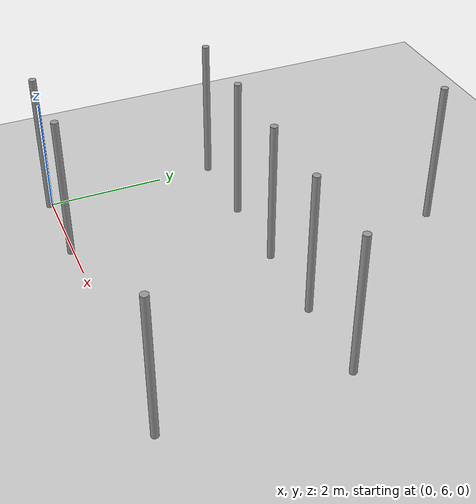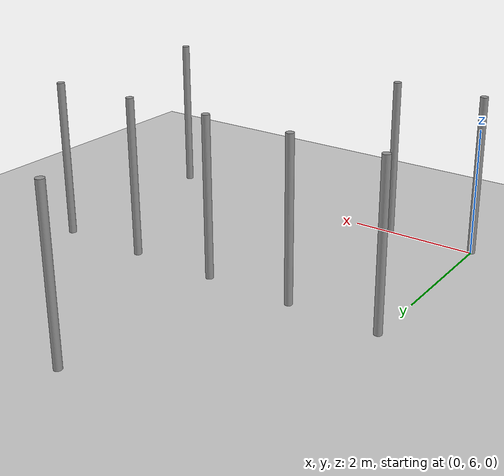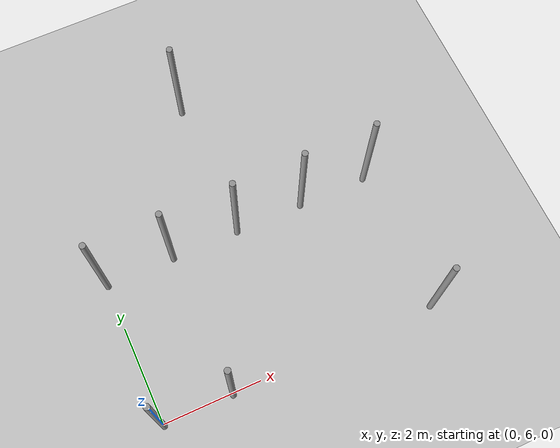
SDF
<sdf version="1.6">
 <world name="default">
  <model name="ground_plane">
   <static>1</static>
   <link name="link">
    <collision name="collision">
     <geometry><plane><normal>0 0 1</normal><size>100 100</size></plane></geometry>
     <surface><friction><ode><mu>100</mu><mu2>50</mu2></ode></friction></surface>
    </collision>
    <visual name="visual">
     <cast_shadows>0</cast_shadows>
     <geometry><plane><normal>0 0 1</normal><size>100 100</size></plane></geometry>
     <material>
      <script><uri>file://media/materials/scripts/gazebo.material</uri><name>Gazebo/Grey</name></script>
     </material>
    </visual>
   </link>
  </model>
  <model name="pole">
   <link name="link_0">
    <inertial>
     <mass>0.0364582</mass>
     <inertia>
      <ixx>0.00312124</ixx>
      <ixy>0</ixy>
      <ixz>0</ixz>
      <iyy>0.00312124</iyy>
      <iyz>0</iyz>
      <izz>0.00016615</izz>
     </inertia>
    </inertial>
    <visual name="visual">
     <geometry><cylinder><radius>0.06</radius><length>2.5</length></cylinder></geometry>
     <material>
      <lighting>1</lighting>
      <script><uri>file://media/materials/scripts/gazebo.material</uri><name>Gazebo/Grey</name></script>
      <ambient>0.3 0.3 0.3 1</ambient>
      <diffuse>0.7 0.7 0.7 1</diffuse>
      <specular>0.01 0.01 0.01 1</specular>
      <emissive>0 0 0 1</emissive>
      <shader type="vertex"><normal_map>__default__</normal_map></shader>
     </material>
    </visual>
    <collision name="collision">
     <geometry><cylinder><radius>0.06</radius><length>2.5</length></cylinder></geometry>
     <surface>
      <friction>
       <ode><mu>1</mu><mu2>1</mu2><fdir1>0 0 0</fdir1><slip1>0</slip1><slip2>0</slip2></ode>
       <torsional>
        <coefficient>1</coefficient>
        <patch_radius>0</patch_radius>
        <surface_radius>0</surface_radius>
        <use_patch_radius>1</use_patch_radius>
        <ode><slip>0</slip></ode>
       </torsional>
      </friction>
      <bounce><restitution_coefficient>0</restitution_coefficient><threshold>1e+06</threshold></bounce>
      <contact>
       <collide_without_contact>0</collide_without_contact>
       <collide_without_contact_bitmask>1</collide_without_contact_bitmask>
       <collide_bitmask>1</collide_bitmask>
       <ode>
        <soft_cfm>0</soft_cfm>
        <soft_erp>0.2</soft_erp>
        <kp>1e+13</kp>
        <kd>1</kd>
        <max_vel>0.01</max_vel>
        <min_depth>0</min_depth>
       </ode>
       <bullet>
        <split_impulse>1</split_impulse>
        <split_impulse_penetration_threshold>-0.01</split_impulse_penetration_threshold>
        <soft_cfm>0</soft_cfm>
        <soft_erp>0.2</soft_erp>
        <kp>1e+13</kp>
        <kd>1</kd>
       </bullet>
      </contact>
     </surface>
    </collision>
   </link>
   <static>0</static>
   <pose>0.006684 5.96113 1.24999 -1e-06 -0 -0.013932</pose>
  </model>
  <model name="pole_0">
   <link name="link_0">
    <inertial>
     <mass>0.0364582</mass>
     <inertia>
      <ixx>0.00312124</ixx>
      <ixy>0</ixy>
      <ixz>0</ixz>
      <iyy>0.00312124</iyy>
      <iyz>0</iyz>
      <izz>0.00016615</izz>
     </inertia>
    </inertial>
    <visual name="visual">
     <geometry><cylinder><radius>0.06</radius><length>2.5</length></cylinder></geometry>
     <material>
      <lighting>1</lighting>
      <script><uri>file://media/materials/scripts/gazebo.material</uri><name>Gazebo/Grey</name></script>
      <ambient>0.3 0.3 0.3 1</ambient>
      <diffuse>0.7 0.7 0.7 1</diffuse>
      <specular>0.01 0.01 0.01 1</specular>
      <emissive>0 0 0 1</emissive>
      <shader type="vertex"><normal_map>__default__</normal_map></shader>
     </material>
    </visual>
    <collision name="collision">
     <geometry><cylinder><radius>0.06</radius><length>2.5</length></cylinder></geometry>
     <surface>
      <friction>
       <ode><mu>1</mu><mu2>1</mu2><fdir1>0 0 0</fdir1><slip1>0</slip1><slip2>0</slip2></ode>
       <torsional>
        <coefficient>1</coefficient>
        <patch_radius>0</patch_radius>
        <surface_radius>0</surface_radius>
        <use_patch_radius>1</use_patch_radius>
        <ode><slip>0</slip></ode>
       </torsional>
      </friction>
      <bounce><restitution_coefficient>0</restitution_coefficient><threshold>1e+06</threshold></bounce>
      <contact>
       <collide_without_contact>0</collide_without_contact>
       <collide_without_contact_bitmask>1</collide_without_contact_bitmask>
       <collide_bitmask>1</collide_bitmask>
       <ode>
        <soft_cfm>0</soft_cfm>
        <soft_erp>0.2</soft_erp>
        <kp>1e+13</kp>
        <kd>1</kd>
        <max_vel>0.01</max_vel>
        <min_depth>0</min_depth>
       </ode>
       <bullet>
        <split_impulse>1</split_impulse>
        <split_impulse_penetration_threshold>-0.01</split_impulse_penetration_threshold>
        <soft_cfm>0</soft_cfm>
        <soft_erp>0.2</soft_erp>
        <kp>1e+13</kp>
        <kd>1</kd>
       </bullet>
      </contact>
     </surface>
    </collision>
   </link>
   <static>0</static>
   <pose>0.013481 8.94126 1.24999 -1e-06 1e-06 -0.016598</pose>
  </model>
  <model name="pole_12">
   <link name="link_0">
    <inertial>
     <mass>0.0364582</mass>
     <inertia>
      <ixx>0.00312124</ixx>
      <ixy>0</ixy>
      <ixz>0</ixz>
      <iyy>0.00312124</iyy>
      <iyz>0</iyz>
      <izz>0.00016615</izz>
     </inertia>
    </inertial>
    <visual name="visual">
     <geometry><cylinder><radius>0.06</radius><length>2.5</length></cylinder></geometry>
     <material>
      <lighting>1</lighting>
      <script><uri>file://media/materials/scripts/gazebo.material</uri><name>Gazebo/Grey</name></script>
      <ambient>0.3 0.3 0.3 1</ambient>
      <diffuse>0.7 0.7 0.7 1</diffuse>
      <specular>0.01 0.01 0.01 1</specular>
      <emissive>0 0 0 1</emissive>
      <shader type="vertex"><normal_map>__default__</normal_map></shader>
     </material>
    </visual>
    <collision name="collision">
     <geometry><cylinder><radius>0.06</radius><length>2.5</length></cylinder></geometry>
     <surface>
      <friction>
       <ode><mu>1</mu><mu2>1</mu2><fdir1>0 0 0</fdir1><slip1>0</slip1><slip2>0</slip2></ode>
       <torsional>
        <coefficient>1</coefficient>
        <patch_radius>0</patch_radius>
        <surface_radius>0</surface_radius>
        <use_patch_radius>1</use_patch_radius>
        <ode><slip>0</slip></ode>
       </torsional>
      </friction>
      <bounce><restitution_coefficient>0</restitution_coefficient><threshold>1e+06</threshold></bounce>
      <contact>
       <collide_without_contact>0</collide_without_contact>
       <collide_without_contact_bitmask>1</collide_without_contact_bitmask>
       <collide_bitmask>1</collide_bitmask>
       <ode>
        <soft_cfm>0</soft_cfm>
        <soft_erp>0.2</soft_erp>
        <kp>1e+13</kp>
        <kd>1</kd>
        <max_vel>0.01</max_vel>
        <min_depth>0</min_depth>
       </ode>
       <bullet>
        <split_impulse>1</split_impulse>
        <split_impulse_penetration_threshold>-0.01</split_impulse_penetration_threshold>
        <soft_cfm>0</soft_cfm>
        <soft_erp>0.2</soft_erp>
        <kp>1e+13</kp>
        <kd>1</kd>
       </bullet>
      </contact>
     </surface>
    </collision>
   </link>
   <static>0</static>
   <pose>1.41357 5.96099 1.24999 0 -1e-06 -0.008945</pose>
  </model>
  <model name="pole_15">
   <link name="link_0">
    <inertial>
     <mass>0.0364582</mass>
     <inertia>
      <ixx>0.00312124</ixx>
      <ixy>0</ixy>
      <ixz>0</ixz>
      <iyy>0.00312124</iyy>
      <iyz>0</iyz>
      <izz>0.00016615</izz>
     </inertia>
    </inertial>
    <visual name="visual">
     <geometry><cylinder><radius>0.06</radius><length>2.5</length></cylinder></geometry>
     <material>
      <lighting>1</lighting>
      <script><uri>file://media/materials/scripts/gazebo.material</uri><name>Gazebo/Grey</name></script>
      <ambient>0.3 0.3 0.3 1</ambient>
      <diffuse>0.7 0.7 0.7 1</diffuse>
      <specular>0.01 0.01 0.01 1</specular>
      <emissive>0 0 0 1</emissive>
      <shader type="vertex"><normal_map>__default__</normal_map></shader>
     </material>
    </visual>
    <collision name="collision">
     <geometry><cylinder><radius>0.06</radius><length>2.5</length></cylinder></geometry>
     <surface>
      <friction>
       <ode><mu>1</mu><mu2>1</mu2><fdir1>0 0 0</fdir1><slip1>0</slip1><slip2>0</slip2></ode>
       <torsional>
        <coefficient>1</coefficient>
        <patch_radius>0</patch_radius>
        <surface_radius>0</surface_radius>
        <use_patch_radius>1</use_patch_radius>
        <ode><slip>0</slip></ode>
       </torsional>
      </friction>
      <bounce><restitution_coefficient>0</restitution_coefficient><threshold>1e+06</threshold></bounce>
      <contact>
       <collide_without_contact>0</collide_without_contact>
       <collide_without_contact_bitmask>1</collide_without_contact_bitmask>
       <collide_bitmask>1</collide_bitmask>
       <ode>
        <soft_cfm>0</soft_cfm>
        <soft_erp>0.2</soft_erp>
        <kp>1e+13</kp>
        <kd>1</kd>
        <max_vel>0.01</max_vel>
        <min_depth>0</min_depth>
       </ode>
       <bullet>
        <split_impulse>1</split_impulse>
        <split_impulse_penetration_threshold>-0.01</split_impulse_penetration_threshold>
        <soft_cfm>0</soft_cfm>
        <soft_erp>0.2</soft_erp>
        <kp>1e+13</kp>
        <kd>1</kd>
       </bullet>
      </contact>
     </surface>
    </collision>
   </link>
   <static>0</static>
   <pose>5.62349 5.96104 1.24999 0 1e-06 -0.009778</pose>
  </model>
  <model name="pole_16">
   <link name="link_0">
    <inertial>
     <mass>0.0364582</mass>
     <inertia>
      <ixx>0.00312124</ixx>
      <ixy>0</ixy>
      <ixz>0</ixz>
      <iyy>0.00312124</iyy>
      <iyz>0</iyz>
      <izz>0.00016615</izz>
     </inertia>
    </inertial>
    <visual name="visual">
     <geometry><cylinder><radius>0.06</radius><length>2.5</length></cylinder></geometry>
     <material>
      <lighting>1</lighting>
      <script><uri>file://media/materials/scripts/gazebo.material</uri><name>Gazebo/Grey</name></script>
      <ambient>0.3 0.3 0.3 1</ambient>
      <diffuse>0.7 0.7 0.7 1</diffuse>
      <specular>0.01 0.01 0.01 1</specular>
      <emissive>0 0 0 1</emissive>
      <shader type="vertex"><normal_map>__default__</normal_map></shader>
     </material>
    </visual>
    <collision name="collision">
     <geometry><cylinder><radius>0.06</radius><length>2.5</length></cylinder></geometry>
     <surface>
      <friction>
       <ode><mu>1</mu><mu2>1</mu2><fdir1>0 0 0</fdir1><slip1>0</slip1><slip2>0</slip2></ode>
       <torsional>
        <coefficient>1</coefficient>
        <patch_radius>0</patch_radius>
        <surface_radius>0</surface_radius>
        <use_patch_radius>1</use_patch_radius>
        <ode><slip>0</slip></ode>
       </torsional>
      </friction>
      <bounce><restitution_coefficient>0</restitution_coefficient><threshold>1e+06</threshold></bounce>
      <contact>
       <collide_without_contact>0</collide_without_contact>
       <collide_without_contact_bitmask>1</collide_without_contact_bitmask>
       <collide_bitmask>1</collide_bitmask>
       <ode>
        <soft_cfm>0</soft_cfm>
        <soft_erp>0.2</soft_erp>
        <kp>1e+13</kp>
        <kd>1</kd>
        <max_vel>0.01</max_vel>
        <min_depth>0</min_depth>
       </ode>
       <bullet>
        <split_impulse>1</split_impulse>
        <split_impulse_penetration_threshold>-0.01</split_impulse_penetration_threshold>
        <soft_cfm>0</soft_cfm>
        <soft_erp>0.2</soft_erp>
        <kp>1e+13</kp>
        <kd>1</kd>
       </bullet>
      </contact>
     </surface>
    </collision>
   </link>
   <static>0</static>
   <pose>1.41308 8.94062 1.24999 1e-06 2e-06 -0.009953</pose>
  </model>
  <model name="pole_17">
   <link name="link_0">
    <inertial>
     <mass>0.0364582</mass>
     <inertia>
      <ixx>0.00312124</ixx>
      <ixy>0</ixy>
      <ixz>0</ixz>
      <iyy>0.00312124</iyy>
      <iyz>0</iyz>
      <izz>0.00016615</izz>
     </inertia>
    </inertial>
    <visual name="visual">
     <geometry><cylinder><radius>0.06</radius><length>2.5</length></cylinder></geometry>
     <material>
      <lighting>1</lighting>
      <script><uri>file://media/materials/scripts/gazebo.material</uri><name>Gazebo/Grey</name></script>
      <ambient>0.3 0.3 0.3 1</ambient>
      <diffuse>0.7 0.7 0.7 1</diffuse>
      <specular>0.01 0.01 0.01 1</specular>
      <emissive>0 0 0 1</emissive>
      <shader type="vertex"><normal_map>__default__</normal_map></shader>
     </material>
    </visual>
    <collision name="collision">
     <geometry><cylinder><radius>0.06</radius><length>2.5</length></cylinder></geometry>
     <surface>
      <friction>
       <ode><mu>1</mu><mu2>1</mu2><fdir1>0 0 0</fdir1><slip1>0</slip1><slip2>0</slip2></ode>
       <torsional>
        <coefficient>1</coefficient>
        <patch_radius>0</patch_radius>
        <surface_radius>0</surface_radius>
        <use_patch_radius>1</use_patch_radius>
        <ode><slip>0</slip></ode>
       </torsional>
      </friction>
      <bounce><restitution_coefficient>0</restitution_coefficient><threshold>1e+06</threshold></bounce>
      <contact>
       <collide_without_contact>0</collide_without_contact>
       <collide_without_contact_bitmask>1</collide_without_contact_bitmask>
       <collide_bitmask>1</collide_bitmask>
       <ode>
        <soft_cfm>0</soft_cfm>
        <soft_erp>0.2</soft_erp>
        <kp>1e+13</kp>
        <kd>1</kd>
        <max_vel>0.01</max_vel>
        <min_depth>0</min_depth>
       </ode>
       <bullet>
        <split_impulse>1</split_impulse>
        <split_impulse_penetration_threshold>-0.01</split_impulse_penetration_threshold>
        <soft_cfm>0</soft_cfm>
        <soft_erp>0.2</soft_erp>
        <kp>1e+13</kp>
        <kd>1</kd>
       </bullet>
      </contact>
     </surface>
    </collision>
   </link>
   <static>0</static>
   <pose>2.79984 8.94055 1.25 0 2e-06 -0.008548</pose>
  </model>
  <model name="pole_18">
   <link name="link_0">
    <inertial>
     <mass>0.0364582</mass>
     <inertia>
      <ixx>0.00312124</ixx>
      <ixy>0</ixy>
      <ixz>0</ixz>
      <iyy>0.00312124</iyy>
      <iyz>0</iyz>
      <izz>0.00016615</izz>
     </inertia>
    </inertial>
    <visual name="visual">
     <geometry><cylinder><radius>0.06</radius><length>2.5</length></cylinder></geometry>
     <material>
      <lighting>1</lighting>
      <script><uri>file://media/materials/scripts/gazebo.material</uri><name>Gazebo/Grey</name></script>
      <ambient>0.3 0.3 0.3 1</ambient>
      <diffuse>0.7 0.7 0.7 1</diffuse>
      <specular>0.01 0.01 0.01 1</specular>
      <emissive>0 0 0 1</emissive>
      <shader type="vertex"><normal_map>__default__</normal_map></shader>
     </material>
    </visual>
    <collision name="collision">
     <geometry><cylinder><radius>0.06</radius><length>2.5</length></cylinder></geometry>
     <surface>
      <friction>
       <ode><mu>1</mu><mu2>1</mu2><fdir1>0 0 0</fdir1><slip1>0</slip1><slip2>0</slip2></ode>
       <torsional>
        <coefficient>1</coefficient>
        <patch_radius>0</patch_radius>
        <surface_radius>0</surface_radius>
        <use_patch_radius>1</use_patch_radius>
        <ode><slip>0</slip></ode>
       </torsional>
      </friction>
      <bounce><restitution_coefficient>0</restitution_coefficient><threshold>1e+06</threshold></bounce>
      <contact>
       <collide_without_contact>0</collide_without_contact>
       <collide_without_contact_bitmask>1</collide_without_contact_bitmask>
       <collide_bitmask>1</collide_bitmask>
       <ode>
        <soft_cfm>0</soft_cfm>
        <soft_erp>0.2</soft_erp>
        <kp>1e+13</kp>
        <kd>1</kd>
        <max_vel>0.01</max_vel>
        <min_depth>0</min_depth>
       </ode>
       <bullet>
        <split_impulse>1</split_impulse>
        <split_impulse_penetration_threshold>-0.01</split_impulse_penetration_threshold>
        <soft_cfm>0</soft_cfm>
        <soft_erp>0.2</soft_erp>
        <kp>1e+13</kp>
        <kd>1</kd>
       </bullet>
      </contact>
     </surface>
    </collision>
   </link>
   <static>0</static>
   <pose>4.20383 8.94053 1.25 -1e-06 -2e-06 -0.006128</pose>
  </model>
  <model name="pole_19">
   <link name="link_0">
    <inertial>
     <mass>0.0364582</mass>
     <inertia>
      <ixx>0.00312124</ixx>
      <ixy>0</ixy>
      <ixz>0</ixz>
      <iyy>0.00312124</iyy>
      <iyz>0</iyz>
      <izz>0.00016615</izz>
     </inertia>
    </inertial>
    <visual name="visual">
     <geometry><cylinder><radius>0.06</radius><length>2.5</length></cylinder></geometry>
     <material>
      <lighting>1</lighting>
      <script><uri>file://media/materials/scripts/gazebo.material</uri><name>Gazebo/Grey</name></script>
      <ambient>0.3 0.3 0.3 1</ambient>
      <diffuse>0.7 0.7 0.7 1</diffuse>
      <specular>0.01 0.01 0.01 1</specular>
      <emissive>0 0 0 1</emissive>
      <shader type="vertex"><normal_map>__default__</normal_map></shader>
     </material>
    </visual>
    <collision name="collision">
     <geometry><cylinder><radius>0.06</radius><length>2.5</length></cylinder></geometry>
     <surface>
      <friction>
       <ode><mu>1</mu><mu2>1</mu2><fdir1>0 0 0</fdir1><slip1>0</slip1><slip2>0</slip2></ode>
       <torsional>
        <coefficient>1</coefficient>
        <patch_radius>0</patch_radius>
        <surface_radius>0</surface_radius>
        <use_patch_radius>1</use_patch_radius>
        <ode><slip>0</slip></ode>
       </torsional>
      </friction>
      <bounce><restitution_coefficient>0</restitution_coefficient><threshold>1e+06</threshold></bounce>
      <contact>
       <collide_without_contact>0</collide_without_contact>
       <collide_without_contact_bitmask>1</collide_without_contact_bitmask>
       <collide_bitmask>1</collide_bitmask>
       <ode>
        <soft_cfm>0</soft_cfm>
        <soft_erp>0.2</soft_erp>
        <kp>1e+13</kp>
        <kd>1</kd>
        <max_vel>0.01</max_vel>
        <min_depth>0</min_depth>
       </ode>
       <bullet>
        <split_impulse>1</split_impulse>
        <split_impulse_penetration_threshold>-0.01</split_impulse_penetration_threshold>
        <soft_cfm>0</soft_cfm>
        <soft_erp>0.2</soft_erp>
        <kp>1e+13</kp>
        <kd>1</kd>
       </bullet>
      </contact>
     </surface>
    </collision>
   </link>
   <static>0</static>
   <pose>5.62934 8.94063 1.24999 -0 2e-06 -0.010026</pose>
  </model>
  <model name="pole_21">
   <link name="link_0">
    <inertial>
     <mass>0.0364582</mass>
     <inertia>
      <ixx>0.00312124</ixx>
      <ixy>0</ixy>
      <ixz>0</ixz>
      <iyy>0.00312124</iyy>
      <iyz>0</iyz>
      <izz>0.00016615</izz>
     </inertia>
    </inertial>
    <visual name="visual">
     <geometry><cylinder><radius>0.06</radius><length>2.5</length></cylinder></geometry>
     <material>
      <lighting>1</lighting>
      <script><uri>file://media/materials/scripts/gazebo.material</uri><name>Gazebo/Grey</name></script>
      <ambient>0.3 0.3 0.3 1</ambient>
      <diffuse>0.7 0.7 0.7 1</diffuse>
      <specular>0.01 0.01 0.01 1</specular>
      <emissive>0 0 0 1</emissive>
      <shader type="vertex"><normal_map>__default__</normal_map></shader>
     </material>
    </visual>
    <collision name="collision">
     <geometry><cylinder><radius>0.06</radius><length>2.5</length></cylinder></geometry>
     <surface>
      <friction>
       <ode><mu>1</mu><mu2>1</mu2><fdir1>0 0 0</fdir1><slip1>0</slip1><slip2>0</slip2></ode>
       <torsional>
        <coefficient>1</coefficient>
        <patch_radius>0</patch_radius>
        <surface_radius>0</surface_radius>
        <use_patch_radius>1</use_patch_radius>
        <ode><slip>0</slip></ode>
       </torsional>
      </friction>
      <bounce><restitution_coefficient>0</restitution_coefficient><threshold>1e+06</threshold></bounce>
      <contact>
       <collide_without_contact>0</collide_without_contact>
       <collide_without_contact_bitmask>1</collide_without_contact_bitmask>
       <collide_bitmask>1</collide_bitmask>
       <ode>
        <soft_cfm>0</soft_cfm>
        <soft_erp>0.2</soft_erp>
        <kp>1e+13</kp>
        <kd>1</kd>
        <max_vel>0.01</max_vel>
        <min_depth>0</min_depth>
       </ode>
       <bullet>
        <split_impulse>1</split_impulse>
        <split_impulse_penetration_threshold>-0.01</split_impulse_penetration_threshold>
        <soft_cfm>0</soft_cfm>
        <soft_erp>0.2</soft_erp>
        <kp>1e+13</kp>
        <kd>1</kd>
       </bullet>
      </contact>
     </surface>
    </collision>
   </link>
   <static>0</static>
   <pose>2.81232 11.8989 1.24998 -0.000144 0.000169 0.043669</pose>
  </model>
 </world>
</sdf>
